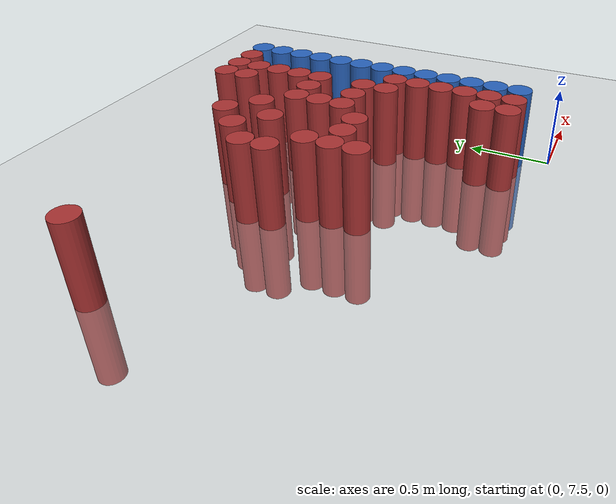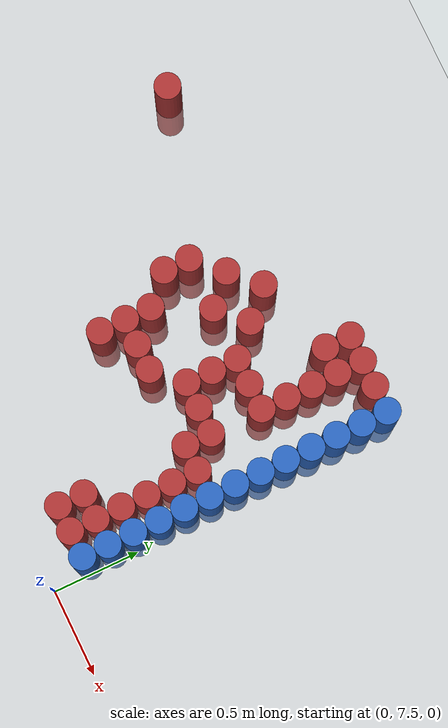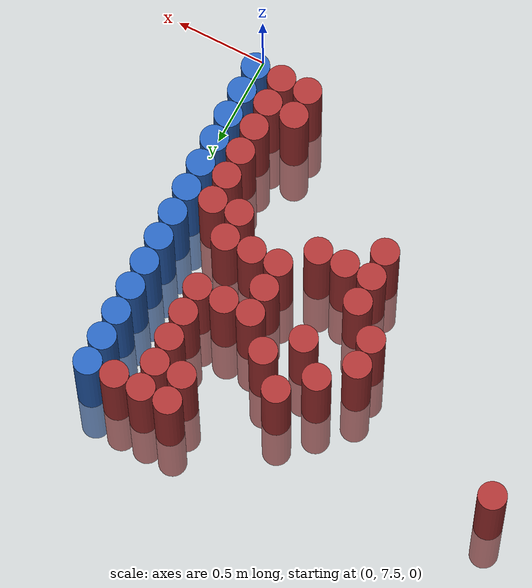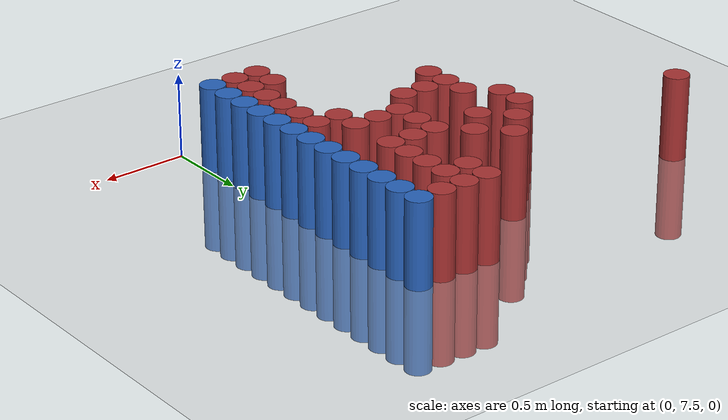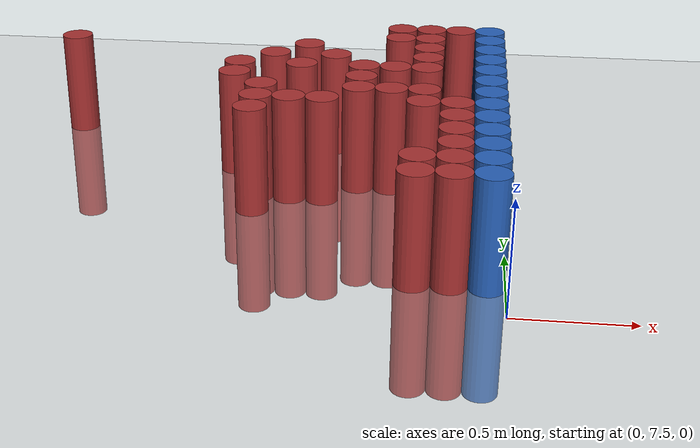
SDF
<sdf version="1.6">
 <world name="default">
  <model name="ground_plane">
   <static>1</static>
   <link name="link">
    <collision name="collision">
     <geometry><plane><normal>0 0 1</normal><size>100 100</size></plane></geometry>
     <surface><friction><ode><mu>100</mu><mu2>50</mu2></ode></friction></surface>
    </collision>
    <visual name="visual">
     <cast_shadows>0</cast_shadows>
     <geometry><plane><normal>0 0 1</normal><size>100 100</size></plane></geometry>
     <material>
      <script><uri>file://media/materials/scripts/gazebo.material</uri><name>Gazebo/Grey</name></script>
     </material>
    </visual>
   </link>
  </model>
  <model name="unit_cylinder_212">
   <static>1</static>
   <pose>-2.175000 9.225000 0.000000 0.000000 0.000000 0.000000</pose>
   <link name="link">
    <inertial>
     <mass>1</mass>
     <inertia><ixx>0.145833</ixx><ixy>0</ixy><ixz>0</ixz><iyy>0.145833</iyy><iyz>0</iyz><izz>0.125</izz></inertia>
    </inertial>
    <collision name="collision">
     <geometry><cylinder><radius>0.075000</radius><length>1</length></cylinder></geometry>
    </collision>
    <visual name="visual">
     <geometry><cylinder><radius>0.075000</radius><length>1</length></cylinder></geometry>
     <material>
      <ambient>0.648000 0.192000 0.192000 1</ambient>
      <diffuse>0.648000 0.192000 0.192000 1</diffuse>
     </material>
     <material>
      <script><name>Gazebo/Grey</name><uri>file://media/materials/scripts/gazebo.material</uri></script>
     </material>
    </visual>
   </link>
  </model>
  <model name="unit_cylinder_235">
   <static>1</static>
   <pose>-1.275000 8.775000 0.000000 0.000000 0.000000 0.000000</pose>
   <link name="link">
    <inertial>
     <mass>1</mass>
     <inertia><ixx>0.145833</ixx><ixy>0</ixy><ixz>0</ixz><iyy>0.145833</iyy><iyz>0</iyz><izz>0.125</izz></inertia>
    </inertial>
    <collision name="collision">
     <geometry><cylinder><radius>0.075000</radius><length>1</length></cylinder></geometry>
    </collision>
    <visual name="visual">
     <geometry><cylinder><radius>0.075000</radius><length>1</length></cylinder></geometry>
     <material>
      <ambient>0.648000 0.192000 0.192000 1</ambient>
      <diffuse>0.648000 0.192000 0.192000 1</diffuse>
     </material>
     <material>
      <script><name>Gazebo/Grey</name><uri>file://media/materials/scripts/gazebo.material</uri></script>
     </material>
    </visual>
   </link>
  </model>
  <model name="unit_cylinder_236">
   <static>1</static>
   <pose>-1.275000 8.925000 0.000000 0.000000 0.000000 0.000000</pose>
   <link name="link">
    <inertial>
     <mass>1</mass>
     <inertia><ixx>0.145833</ixx><ixy>0</ixy><ixz>0</ixz><iyy>0.145833</iyy><iyz>0</iyz><izz>0.125</izz></inertia>
    </inertial>
    <collision name="collision">
     <geometry><cylinder><radius>0.075000</radius><length>1</length></cylinder></geometry>
    </collision>
    <visual name="visual">
     <geometry><cylinder><radius>0.075000</radius><length>1</length></cylinder></geometry>
     <material>
      <ambient>0.648000 0.192000 0.192000 1</ambient>
      <diffuse>0.648000 0.192000 0.192000 1</diffuse>
     </material>
     <material>
      <script><name>Gazebo/Grey</name><uri>file://media/materials/scripts/gazebo.material</uri></script>
     </material>
    </visual>
   </link>
  </model>
  <model name="unit_cylinder_241">
   <static>1</static>
   <pose>-1.125000 8.325000 0.000000 0.000000 0.000000 0.000000</pose>
   <link name="link">
    <inertial>
     <mass>1</mass>
     <inertia><ixx>0.145833</ixx><ixy>0</ixy><ixz>0</ixz><iyy>0.145833</iyy><iyz>0</iyz><izz>0.125</izz></inertia>
    </inertial>
    <collision name="collision">
     <geometry><cylinder><radius>0.075000</radius><length>1</length></cylinder></geometry>
    </collision>
    <visual name="visual">
     <geometry><cylinder><radius>0.075000</radius><length>1</length></cylinder></geometry>
     <material>
      <ambient>0.648000 0.192000 0.192000 1</ambient>
      <diffuse>0.648000 0.192000 0.192000 1</diffuse>
     </material>
     <material>
      <script><name>Gazebo/Grey</name><uri>file://media/materials/scripts/gazebo.material</uri></script>
     </material>
    </visual>
   </link>
  </model>
  <model name="unit_cylinder_242">
   <static>1</static>
   <pose>-1.125000 8.475000 0.000000 0.000000 0.000000 0.000000</pose>
   <link name="link">
    <inertial>
     <mass>1</mass>
     <inertia><ixx>0.145833</ixx><ixy>0</ixy><ixz>0</ixz><iyy>0.145833</iyy><iyz>0</iyz><izz>0.125</izz></inertia>
    </inertial>
    <collision name="collision">
     <geometry><cylinder><radius>0.075000</radius><length>1</length></cylinder></geometry>
    </collision>
    <visual name="visual">
     <geometry><cylinder><radius>0.075000</radius><length>1</length></cylinder></geometry>
     <material>
      <ambient>0.648000 0.192000 0.192000 1</ambient>
      <diffuse>0.648000 0.192000 0.192000 1</diffuse>
     </material>
     <material>
      <script><name>Gazebo/Grey</name><uri>file://media/materials/scripts/gazebo.material</uri></script>
     </material>
    </visual>
   </link>
  </model>
  <model name="unit_cylinder_243">
   <static>1</static>
   <pose>-1.125000 8.625000 0.000000 0.000000 0.000000 0.000000</pose>
   <link name="link">
    <inertial>
     <mass>1</mass>
     <inertia><ixx>0.145833</ixx><ixy>0</ixy><ixz>0</ixz><iyy>0.145833</iyy><iyz>0</iyz><izz>0.125</izz></inertia>
    </inertial>
    <collision name="collision">
     <geometry><cylinder><radius>0.075000</radius><length>1</length></cylinder></geometry>
    </collision>
    <visual name="visual">
     <geometry><cylinder><radius>0.075000</radius><length>1</length></cylinder></geometry>
     <material>
      <ambient>0.648000 0.192000 0.192000 1</ambient>
      <diffuse>0.648000 0.192000 0.192000 1</diffuse>
     </material>
     <material>
      <script><name>Gazebo/Grey</name><uri>file://media/materials/scripts/gazebo.material</uri></script>
     </material>
    </visual>
   </link>
  </model>
  <model name="unit_cylinder_244">
   <static>1</static>
   <pose>-1.125000 9.075000 0.000000 0.000000 0.000000 0.000000</pose>
   <link name="link">
    <inertial>
     <mass>1</mass>
     <inertia><ixx>0.145833</ixx><ixy>0</ixy><ixz>0</ixz><iyy>0.145833</iyy><iyz>0</iyz><izz>0.125</izz></inertia>
    </inertial>
    <collision name="collision">
     <geometry><cylinder><radius>0.075000</radius><length>1</length></cylinder></geometry>
    </collision>
    <visual name="visual">
     <geometry><cylinder><radius>0.075000</radius><length>1</length></cylinder></geometry>
     <material>
      <ambient>0.648000 0.192000 0.192000 1</ambient>
      <diffuse>0.648000 0.192000 0.192000 1</diffuse>
     </material>
     <material>
      <script><name>Gazebo/Grey</name><uri>file://media/materials/scripts/gazebo.material</uri></script>
     </material>
    </visual>
   </link>
  </model>
  <model name="unit_cylinder_248">
   <static>1</static>
   <pose>-0.975000 8.475000 0.000000 0.000000 0.000000 0.000000</pose>
   <link name="link">
    <inertial>
     <mass>1</mass>
     <inertia><ixx>0.145833</ixx><ixy>0</ixy><ixz>0</ixz><iyy>0.145833</iyy><iyz>0</iyz><izz>0.125</izz></inertia>
    </inertial>
    <collision name="collision">
     <geometry><cylinder><radius>0.075000</radius><length>1</length></cylinder></geometry>
    </collision>
    <visual name="visual">
     <geometry><cylinder><radius>0.075000</radius><length>1</length></cylinder></geometry>
     <material>
      <ambient>0.648000 0.192000 0.192000 1</ambient>
      <diffuse>0.648000 0.192000 0.192000 1</diffuse>
     </material>
     <material>
      <script><name>Gazebo/Grey</name><uri>file://media/materials/scripts/gazebo.material</uri></script>
     </material>
    </visual>
   </link>
  </model>
  <model name="unit_cylinder_249">
   <static>1</static>
   <pose>-0.975000 8.925000 0.000000 0.000000 0.000000 0.000000</pose>
   <link name="link">
    <inertial>
     <mass>1</mass>
     <inertia><ixx>0.145833</ixx><ixy>0</ixy><ixz>0</ixz><iyy>0.145833</iyy><iyz>0</iyz><izz>0.125</izz></inertia>
    </inertial>
    <collision name="collision">
     <geometry><cylinder><radius>0.075000</radius><length>1</length></cylinder></geometry>
    </collision>
    <visual name="visual">
     <geometry><cylinder><radius>0.075000</radius><length>1</length></cylinder></geometry>
     <material>
      <ambient>0.648000 0.192000 0.192000 1</ambient>
      <diffuse>0.648000 0.192000 0.192000 1</diffuse>
     </material>
     <material>
      <script><name>Gazebo/Grey</name><uri>file://media/materials/scripts/gazebo.material</uri></script>
     </material>
    </visual>
   </link>
  </model>
  <model name="unit_cylinder_250">
   <static>1</static>
   <pose>-0.975000 9.225000 0.000000 0.000000 0.000000 0.000000</pose>
   <link name="link">
    <inertial>
     <mass>1</mass>
     <inertia><ixx>0.145833</ixx><ixy>0</ixy><ixz>0</ixz><iyy>0.145833</iyy><iyz>0</iyz><izz>0.125</izz></inertia>
    </inertial>
    <collision name="collision">
     <geometry><cylinder><radius>0.075000</radius><length>1</length></cylinder></geometry>
    </collision>
    <visual name="visual">
     <geometry><cylinder><radius>0.075000</radius><length>1</length></cylinder></geometry>
     <material>
      <ambient>0.648000 0.192000 0.192000 1</ambient>
      <diffuse>0.648000 0.192000 0.192000 1</diffuse>
     </material>
     <material>
      <script><name>Gazebo/Grey</name><uri>file://media/materials/scripts/gazebo.material</uri></script>
     </material>
    </visual>
   </link>
  </model>
  <model name="unit_cylinder_253">
   <static>1</static>
   <pose>-0.825000 8.475000 0.000000 0.000000 0.000000 0.000000</pose>
   <link name="link">
    <inertial>
     <mass>1</mass>
     <inertia><ixx>0.145833</ixx><ixy>0</ixy><ixz>0</ixz><iyy>0.145833</iyy><iyz>0</iyz><izz>0.125</izz></inertia>
    </inertial>
    <collision name="collision">
     <geometry><cylinder><radius>0.075000</radius><length>1</length></cylinder></geometry>
    </collision>
    <visual name="visual">
     <geometry><cylinder><radius>0.075000</radius><length>1</length></cylinder></geometry>
     <material>
      <ambient>0.648000 0.192000 0.192000 1</ambient>
      <diffuse>0.648000 0.192000 0.192000 1</diffuse>
     </material>
     <material>
      <script><name>Gazebo/Grey</name><uri>file://media/materials/scripts/gazebo.material</uri></script>
     </material>
    </visual>
   </link>
  </model>
  <model name="unit_cylinder_254">
   <static>1</static>
   <pose>-0.825000 9.075000 0.000000 0.000000 0.000000 0.000000</pose>
   <link name="link">
    <inertial>
     <mass>1</mass>
     <inertia><ixx>0.145833</ixx><ixy>0</ixy><ixz>0</ixz><iyy>0.145833</iyy><iyz>0</iyz><izz>0.125</izz></inertia>
    </inertial>
    <collision name="collision">
     <geometry><cylinder><radius>0.075000</radius><length>1</length></cylinder></geometry>
    </collision>
    <visual name="visual">
     <geometry><cylinder><radius>0.075000</radius><length>1</length></cylinder></geometry>
     <material>
      <ambient>0.648000 0.192000 0.192000 1</ambient>
      <diffuse>0.648000 0.192000 0.192000 1</diffuse>
     </material>
     <material>
      <script><name>Gazebo/Grey</name><uri>file://media/materials/scripts/gazebo.material</uri></script>
     </material>
    </visual>
   </link>
  </model>
  <model name="unit_cylinder_259">
   <static>1</static>
   <pose>-0.675000 8.625000 0.000000 0.000000 0.000000 0.000000</pose>
   <link name="link">
    <inertial>
     <mass>1</mass>
     <inertia><ixx>0.145833</ixx><ixy>0</ixy><ixz>0</ixz><iyy>0.145833</iyy><iyz>0</iyz><izz>0.125</izz></inertia>
    </inertial>
    <collision name="collision">
     <geometry><cylinder><radius>0.075000</radius><length>1</length></cylinder></geometry>
    </collision>
    <visual name="visual">
     <geometry><cylinder><radius>0.075000</radius><length>1</length></cylinder></geometry>
     <material>
      <ambient>0.648000 0.192000 0.192000 1</ambient>
      <diffuse>0.648000 0.192000 0.192000 1</diffuse>
     </material>
     <material>
      <script><name>Gazebo/Grey</name><uri>file://media/materials/scripts/gazebo.material</uri></script>
     </material>
    </visual>
   </link>
  </model>
  <model name="unit_cylinder_260">
   <static>1</static>
   <pose>-0.675000 8.775000 0.000000 0.000000 0.000000 0.000000</pose>
   <link name="link">
    <inertial>
     <mass>1</mass>
     <inertia><ixx>0.145833</ixx><ixy>0</ixy><ixz>0</ixz><iyy>0.145833</iyy><iyz>0</iyz><izz>0.125</izz></inertia>
    </inertial>
    <collision name="collision">
     <geometry><cylinder><radius>0.075000</radius><length>1</length></cylinder></geometry>
    </collision>
    <visual name="visual">
     <geometry><cylinder><radius>0.075000</radius><length>1</length></cylinder></geometry>
     <material>
      <ambient>0.648000 0.192000 0.192000 1</ambient>
      <diffuse>0.648000 0.192000 0.192000 1</diffuse>
     </material>
     <material>
      <script><name>Gazebo/Grey</name><uri>file://media/materials/scripts/gazebo.material</uri></script>
     </material>
    </visual>
   </link>
  </model>
  <model name="unit_cylinder_261">
   <static>1</static>
   <pose>-0.675000 8.925000 0.000000 0.000000 0.000000 0.000000</pose>
   <link name="link">
    <inertial>
     <mass>1</mass>
     <inertia><ixx>0.145833</ixx><ixy>0</ixy><ixz>0</ixz><iyy>0.145833</iyy><iyz>0</iyz><izz>0.125</izz></inertia>
    </inertial>
    <collision name="collision">
     <geometry><cylinder><radius>0.075000</radius><length>1</length></cylinder></geometry>
    </collision>
    <visual name="visual">
     <geometry><cylinder><radius>0.075000</radius><length>1</length></cylinder></geometry>
     <material>
      <ambient>0.648000 0.192000 0.192000 1</ambient>
      <diffuse>0.648000 0.192000 0.192000 1</diffuse>
     </material>
     <material>
      <script><name>Gazebo/Grey</name><uri>file://media/materials/scripts/gazebo.material</uri></script>
     </material>
    </visual>
   </link>
  </model>
  <model name="unit_cylinder_269">
   <static>1</static>
   <pose>-0.525000 8.625000 0.000000 0.000000 0.000000 0.000000</pose>
   <link name="link">
    <inertial>
     <mass>1</mass>
     <inertia><ixx>0.145833</ixx><ixy>0</ixy><ixz>0</ixz><iyy>0.145833</iyy><iyz>0</iyz><izz>0.125</izz></inertia>
    </inertial>
    <collision name="collision">
     <geometry><cylinder><radius>0.075000</radius><length>1</length></cylinder></geometry>
    </collision>
    <visual name="visual">
     <geometry><cylinder><radius>0.075000</radius><length>1</length></cylinder></geometry>
     <material>
      <ambient>0.648000 0.192000 0.192000 1</ambient>
      <diffuse>0.648000 0.192000 0.192000 1</diffuse>
     </material>
     <material>
      <script><name>Gazebo/Grey</name><uri>file://media/materials/scripts/gazebo.material</uri></script>
     </material>
    </visual>
   </link>
  </model>
  <model name="unit_cylinder_270">
   <static>1</static>
   <pose>-0.525000 8.925000 0.000000 0.000000 0.000000 0.000000</pose>
   <link name="link">
    <inertial>
     <mass>1</mass>
     <inertia><ixx>0.145833</ixx><ixy>0</ixy><ixz>0</ixz><iyy>0.145833</iyy><iyz>0</iyz><izz>0.125</izz></inertia>
    </inertial>
    <collision name="collision">
     <geometry><cylinder><radius>0.075000</radius><length>1</length></cylinder></geometry>
    </collision>
    <visual name="visual">
     <geometry><cylinder><radius>0.075000</radius><length>1</length></cylinder></geometry>
     <material>
      <ambient>0.648000 0.192000 0.192000 1</ambient>
      <diffuse>0.648000 0.192000 0.192000 1</diffuse>
     </material>
     <material>
      <script><name>Gazebo/Grey</name><uri>file://media/materials/scripts/gazebo.material</uri></script>
     </material>
    </visual>
   </link>
  </model>
  <model name="unit_cylinder_271">
   <static>1</static>
   <pose>-0.525000 9.375000 0.000000 0.000000 0.000000 0.000000</pose>
   <link name="link">
    <inertial>
     <mass>1</mass>
     <inertia><ixx>0.145833</ixx><ixy>0</ixy><ixz>0</ixz><iyy>0.145833</iyy><iyz>0</iyz><izz>0.125</izz></inertia>
    </inertial>
    <collision name="collision">
     <geometry><cylinder><radius>0.075000</radius><length>1</length></cylinder></geometry>
    </collision>
    <visual name="visual">
     <geometry><cylinder><radius>0.075000</radius><length>1</length></cylinder></geometry>
     <material>
      <ambient>0.648000 0.192000 0.192000 1</ambient>
      <diffuse>0.648000 0.192000 0.192000 1</diffuse>
     </material>
     <material>
      <script><name>Gazebo/Grey</name><uri>file://media/materials/scripts/gazebo.material</uri></script>
     </material>
    </visual>
   </link>
  </model>
  <model name="unit_cylinder_272">
   <static>1</static>
   <pose>-0.525000 9.525000 0.000000 0.000000 0.000000 0.000000</pose>
   <link name="link">
    <inertial>
     <mass>1</mass>
     <inertia><ixx>0.145833</ixx><ixy>0</ixy><ixz>0</ixz><iyy>0.145833</iyy><iyz>0</iyz><izz>0.125</izz></inertia>
    </inertial>
    <collision name="collision">
     <geometry><cylinder><radius>0.075000</radius><length>1</length></cylinder></geometry>
    </collision>
    <visual name="visual">
     <geometry><cylinder><radius>0.075000</radius><length>1</length></cylinder></geometry>
     <material>
      <ambient>0.648000 0.192000 0.192000 1</ambient>
      <diffuse>0.648000 0.192000 0.192000 1</diffuse>
     </material>
     <material>
      <script><name>Gazebo/Grey</name><uri>file://media/materials/scripts/gazebo.material</uri></script>
     </material>
    </visual>
   </link>
  </model>
  <model name="unit_cylinder_282">
   <static>1</static>
   <pose>-0.375000 7.725000 0.000000 0.000000 0.000000 0.000000</pose>
   <link name="link">
    <inertial>
     <mass>1</mass>
     <inertia><ixx>0.145833</ixx><ixy>0</ixy><ixz>0</ixz><iyy>0.145833</iyy><iyz>0</iyz><izz>0.125</izz></inertia>
    </inertial>
    <collision name="collision">
     <geometry><cylinder><radius>0.075000</radius><length>1</length></cylinder></geometry>
    </collision>
    <visual name="visual">
     <geometry><cylinder><radius>0.075000</radius><length>1</length></cylinder></geometry>
     <material>
      <ambient>0.648000 0.192000 0.192000 1</ambient>
      <diffuse>0.648000 0.192000 0.192000 1</diffuse>
     </material>
     <material>
      <script><name>Gazebo/Grey</name><uri>file://media/materials/scripts/gazebo.material</uri></script>
     </material>
    </visual>
   </link>
  </model>
  <model name="unit_cylinder_283">
   <static>1</static>
   <pose>-0.375000 7.875000 0.000000 0.000000 0.000000 0.000000</pose>
   <link name="link">
    <inertial>
     <mass>1</mass>
     <inertia><ixx>0.145833</ixx><ixy>0</ixy><ixz>0</ixz><iyy>0.145833</iyy><iyz>0</iyz><izz>0.125</izz></inertia>
    </inertial>
    <collision name="collision">
     <geometry><cylinder><radius>0.075000</radius><length>1</length></cylinder></geometry>
    </collision>
    <visual name="visual">
     <geometry><cylinder><radius>0.075000</radius><length>1</length></cylinder></geometry>
     <material>
      <ambient>0.648000 0.192000 0.192000 1</ambient>
      <diffuse>0.648000 0.192000 0.192000 1</diffuse>
     </material>
     <material>
      <script><name>Gazebo/Grey</name><uri>file://media/materials/scripts/gazebo.material</uri></script>
     </material>
    </visual>
   </link>
  </model>
  <model name="unit_cylinder_284">
   <static>1</static>
   <pose>-0.375000 8.475000 0.000000 0.000000 0.000000 0.000000</pose>
   <link name="link">
    <inertial>
     <mass>1</mass>
     <inertia><ixx>0.145833</ixx><ixy>0</ixy><ixz>0</ixz><iyy>0.145833</iyy><iyz>0</iyz><izz>0.125</izz></inertia>
    </inertial>
    <collision name="collision">
     <geometry><cylinder><radius>0.075000</radius><length>1</length></cylinder></geometry>
    </collision>
    <visual name="visual">
     <geometry><cylinder><radius>0.075000</radius><length>1</length></cylinder></geometry>
     <material>
      <ambient>0.648000 0.192000 0.192000 1</ambient>
      <diffuse>0.648000 0.192000 0.192000 1</diffuse>
     </material>
     <material>
      <script><name>Gazebo/Grey</name><uri>file://media/materials/scripts/gazebo.material</uri></script>
     </material>
    </visual>
   </link>
  </model>
  <model name="unit_cylinder_285">
   <static>1</static>
   <pose>-0.375000 8.625000 0.000000 0.000000 0.000000 0.000000</pose>
   <link name="link">
    <inertial>
     <mass>1</mass>
     <inertia><ixx>0.145833</ixx><ixy>0</ixy><ixz>0</ixz><iyy>0.145833</iyy><iyz>0</iyz><izz>0.125</izz></inertia>
    </inertial>
    <collision name="collision">
     <geometry><cylinder><radius>0.075000</radius><length>1</length></cylinder></geometry>
    </collision>
    <visual name="visual">
     <geometry><cylinder><radius>0.075000</radius><length>1</length></cylinder></geometry>
     <material>
      <ambient>0.648000 0.192000 0.192000 1</ambient>
      <diffuse>0.648000 0.192000 0.192000 1</diffuse>
     </material>
     <material>
      <script><name>Gazebo/Grey</name><uri>file://media/materials/scripts/gazebo.material</uri></script>
     </material>
    </visual>
   </link>
  </model>
  <model name="unit_cylinder_286">
   <static>1</static>
   <pose>-0.375000 8.925000 0.000000 0.000000 0.000000 0.000000</pose>
   <link name="link">
    <inertial>
     <mass>1</mass>
     <inertia><ixx>0.145833</ixx><ixy>0</ixy><ixz>0</ixz><iyy>0.145833</iyy><iyz>0</iyz><izz>0.125</izz></inertia>
    </inertial>
    <collision name="collision">
     <geometry><cylinder><radius>0.075000</radius><length>1</length></cylinder></geometry>
    </collision>
    <visual name="visual">
     <geometry><cylinder><radius>0.075000</radius><length>1</length></cylinder></geometry>
     <material>
      <ambient>0.648000 0.192000 0.192000 1</ambient>
      <diffuse>0.648000 0.192000 0.192000 1</diffuse>
     </material>
     <material>
      <script><name>Gazebo/Grey</name><uri>file://media/materials/scripts/gazebo.material</uri></script>
     </material>
    </visual>
   </link>
  </model>
  <model name="unit_cylinder_287">
   <static>1</static>
   <pose>-0.375000 9.075000 0.000000 0.000000 0.000000 0.000000</pose>
   <link name="link">
    <inertial>
     <mass>1</mass>
     <inertia><ixx>0.145833</ixx><ixy>0</ixy><ixz>0</ixz><iyy>0.145833</iyy><iyz>0</iyz><izz>0.125</izz></inertia>
    </inertial>
    <collision name="collision">
     <geometry><cylinder><radius>0.075000</radius><length>1</length></cylinder></geometry>
    </collision>
    <visual name="visual">
     <geometry><cylinder><radius>0.075000</radius><length>1</length></cylinder></geometry>
     <material>
      <ambient>0.648000 0.192000 0.192000 1</ambient>
      <diffuse>0.648000 0.192000 0.192000 1</diffuse>
     </material>
     <material>
      <script><name>Gazebo/Grey</name><uri>file://media/materials/scripts/gazebo.material</uri></script>
     </material>
    </visual>
   </link>
  </model>
  <model name="unit_cylinder_288">
   <static>1</static>
   <pose>-0.375000 9.225000 0.000000 0.000000 0.000000 0.000000</pose>
   <link name="link">
    <inertial>
     <mass>1</mass>
     <inertia><ixx>0.145833</ixx><ixy>0</ixy><ixz>0</ixz><iyy>0.145833</iyy><iyz>0</iyz><izz>0.125</izz></inertia>
    </inertial>
    <collision name="collision">
     <geometry><cylinder><radius>0.075000</radius><length>1</length></cylinder></geometry>
    </collision>
    <visual name="visual">
     <geometry><cylinder><radius>0.075000</radius><length>1</length></cylinder></geometry>
     <material>
      <ambient>0.648000 0.192000 0.192000 1</ambient>
      <diffuse>0.648000 0.192000 0.192000 1</diffuse>
     </material>
     <material>
      <script><name>Gazebo/Grey</name><uri>file://media/materials/scripts/gazebo.material</uri></script>
     </material>
    </visual>
   </link>
  </model>
  <model name="unit_cylinder_289">
   <static>1</static>
   <pose>-0.375000 9.375000 0.000000 0.000000 0.000000 0.000000</pose>
   <link name="link">
    <inertial>
     <mass>1</mass>
     <inertia><ixx>0.145833</ixx><ixy>0</ixy><ixz>0</ixz><iyy>0.145833</iyy><iyz>0</iyz><izz>0.125</izz></inertia>
    </inertial>
    <collision name="collision">
     <geometry><cylinder><radius>0.075000</radius><length>1</length></cylinder></geometry>
    </collision>
    <visual name="visual">
     <geometry><cylinder><radius>0.075000</radius><length>1</length></cylinder></geometry>
     <material>
      <ambient>0.648000 0.192000 0.192000 1</ambient>
      <diffuse>0.648000 0.192000 0.192000 1</diffuse>
     </material>
     <material>
      <script><name>Gazebo/Grey</name><uri>file://media/materials/scripts/gazebo.material</uri></script>
     </material>
    </visual>
   </link>
  </model>
  <model name="unit_cylinder_290">
   <static>1</static>
   <pose>-0.375000 9.525000 0.000000 0.000000 0.000000 0.000000</pose>
   <link name="link">
    <inertial>
     <mass>1</mass>
     <inertia><ixx>0.145833</ixx><ixy>0</ixy><ixz>0</ixz><iyy>0.145833</iyy><iyz>0</iyz><izz>0.125</izz></inertia>
    </inertial>
    <collision name="collision">
     <geometry><cylinder><radius>0.075000</radius><length>1</length></cylinder></geometry>
    </collision>
    <visual name="visual">
     <geometry><cylinder><radius>0.075000</radius><length>1</length></cylinder></geometry>
     <material>
      <ambient>0.648000 0.192000 0.192000 1</ambient>
      <diffuse>0.648000 0.192000 0.192000 1</diffuse>
     </material>
     <material>
      <script><name>Gazebo/Grey</name><uri>file://media/materials/scripts/gazebo.material</uri></script>
     </material>
    </visual>
   </link>
  </model>
  <model name="unit_cylinder_299">
   <static>1</static>
   <pose>-0.225000 7.725000 0.000000 0.000000 0.000000 0.000000</pose>
   <link name="link">
    <inertial>
     <mass>1</mass>
     <inertia><ixx>0.145833</ixx><ixy>0</ixy><ixz>0</ixz><iyy>0.145833</iyy><iyz>0</iyz><izz>0.125</izz></inertia>
    </inertial>
    <collision name="collision">
     <geometry><cylinder><radius>0.075000</radius><length>1</length></cylinder></geometry>
    </collision>
    <visual name="visual">
     <geometry><cylinder><radius>0.075000</radius><length>1</length></cylinder></geometry>
     <material>
      <ambient>0.648000 0.192000 0.192000 1</ambient>
      <diffuse>0.648000 0.192000 0.192000 1</diffuse>
     </material>
     <material>
      <script><name>Gazebo/Grey</name><uri>file://media/materials/scripts/gazebo.material</uri></script>
     </material>
    </visual>
   </link>
  </model>
  <model name="unit_cylinder_300">
   <static>1</static>
   <pose>-0.225000 7.875000 0.000000 0.000000 0.000000 0.000000</pose>
   <link name="link">
    <inertial>
     <mass>1</mass>
     <inertia><ixx>0.145833</ixx><ixy>0</ixy><ixz>0</ixz><iyy>0.145833</iyy><iyz>0</iyz><izz>0.125</izz></inertia>
    </inertial>
    <collision name="collision">
     <geometry><cylinder><radius>0.075000</radius><length>1</length></cylinder></geometry>
    </collision>
    <visual name="visual">
     <geometry><cylinder><radius>0.075000</radius><length>1</length></cylinder></geometry>
     <material>
      <ambient>0.648000 0.192000 0.192000 1</ambient>
      <diffuse>0.648000 0.192000 0.192000 1</diffuse>
     </material>
     <material>
      <script><name>Gazebo/Grey</name><uri>file://media/materials/scripts/gazebo.material</uri></script>
     </material>
    </visual>
   </link>
  </model>
  <model name="unit_cylinder_301">
   <static>1</static>
   <pose>-0.225000 8.025000 0.000000 0.000000 0.000000 0.000000</pose>
   <link name="link">
    <inertial>
     <mass>1</mass>
     <inertia><ixx>0.145833</ixx><ixy>0</ixy><ixz>0</ixz><iyy>0.145833</iyy><iyz>0</iyz><izz>0.125</izz></inertia>
    </inertial>
    <collision name="collision">
     <geometry><cylinder><radius>0.075000</radius><length>1</length></cylinder></geometry>
    </collision>
    <visual name="visual">
     <geometry><cylinder><radius>0.075000</radius><length>1</length></cylinder></geometry>
     <material>
      <ambient>0.648000 0.192000 0.192000 1</ambient>
      <diffuse>0.648000 0.192000 0.192000 1</diffuse>
     </material>
     <material>
      <script><name>Gazebo/Grey</name><uri>file://media/materials/scripts/gazebo.material</uri></script>
     </material>
    </visual>
   </link>
  </model>
  <model name="unit_cylinder_302">
   <static>1</static>
   <pose>-0.225000 8.175000 0.000000 0.000000 0.000000 0.000000</pose>
   <link name="link">
    <inertial>
     <mass>1</mass>
     <inertia><ixx>0.145833</ixx><ixy>0</ixy><ixz>0</ixz><iyy>0.145833</iyy><iyz>0</iyz><izz>0.125</izz></inertia>
    </inertial>
    <collision name="collision">
     <geometry><cylinder><radius>0.075000</radius><length>1</length></cylinder></geometry>
    </collision>
    <visual name="visual">
     <geometry><cylinder><radius>0.075000</radius><length>1</length></cylinder></geometry>
     <material>
      <ambient>0.648000 0.192000 0.192000 1</ambient>
      <diffuse>0.648000 0.192000 0.192000 1</diffuse>
     </material>
     <material>
      <script><name>Gazebo/Grey</name><uri>file://media/materials/scripts/gazebo.material</uri></script>
     </material>
    </visual>
   </link>
  </model>
  <model name="unit_cylinder_303">
   <static>1</static>
   <pose>-0.225000 8.325000 0.000000 0.000000 0.000000 0.000000</pose>
   <link name="link">
    <inertial>
     <mass>1</mass>
     <inertia><ixx>0.145833</ixx><ixy>0</ixy><ixz>0</ixz><iyy>0.145833</iyy><iyz>0</iyz><izz>0.125</izz></inertia>
    </inertial>
    <collision name="collision">
     <geometry><cylinder><radius>0.075000</radius><length>1</length></cylinder></geometry>
    </collision>
    <visual name="visual">
     <geometry><cylinder><radius>0.075000</radius><length>1</length></cylinder></geometry>
     <material>
      <ambient>0.648000 0.192000 0.192000 1</ambient>
      <diffuse>0.648000 0.192000 0.192000 1</diffuse>
     </material>
     <material>
      <script><name>Gazebo/Grey</name><uri>file://media/materials/scripts/gazebo.material</uri></script>
     </material>
    </visual>
   </link>
  </model>
  <model name="unit_cylinder_304">
   <static>1</static>
   <pose>-0.225000 8.475000 0.000000 0.000000 0.000000 0.000000</pose>
   <link name="link">
    <inertial>
     <mass>1</mass>
     <inertia><ixx>0.145833</ixx><ixy>0</ixy><ixz>0</ixz><iyy>0.145833</iyy><iyz>0</iyz><izz>0.125</izz></inertia>
    </inertial>
    <collision name="collision">
     <geometry><cylinder><radius>0.075000</radius><length>1</length></cylinder></geometry>
    </collision>
    <visual name="visual">
     <geometry><cylinder><radius>0.075000</radius><length>1</length></cylinder></geometry>
     <material>
      <ambient>0.648000 0.192000 0.192000 1</ambient>
      <diffuse>0.648000 0.192000 0.192000 1</diffuse>
     </material>
     <material>
      <script><name>Gazebo/Grey</name><uri>file://media/materials/scripts/gazebo.material</uri></script>
     </material>
    </visual>
   </link>
  </model>
  <model name="unit_cylinder_305">
   <static>1</static>
   <pose>-0.225000 9.525000 0.000000 0.000000 0.000000 0.000000</pose>
   <link name="link">
    <inertial>
     <mass>1</mass>
     <inertia><ixx>0.145833</ixx><ixy>0</ixy><ixz>0</ixz><iyy>0.145833</iyy><iyz>0</iyz><izz>0.125</izz></inertia>
    </inertial>
    <collision name="collision">
     <geometry><cylinder><radius>0.075000</radius><length>1</length></cylinder></geometry>
    </collision>
    <visual name="visual">
     <geometry><cylinder><radius>0.075000</radius><length>1</length></cylinder></geometry>
     <material>
      <ambient>0.648000 0.192000 0.192000 1</ambient>
      <diffuse>0.648000 0.192000 0.192000 1</diffuse>
     </material>
     <material>
      <script><name>Gazebo/Grey</name><uri>file://media/materials/scripts/gazebo.material</uri></script>
     </material>
    </visual>
   </link>
  </model>
  <model name="unit_cylinder_323">
   <static>1</static>
   <pose>-0.075000 7.725000 0.000000 0.000000 0.000000 0.000000</pose>
   <link name="link">
    <inertial>
     <mass>1</mass>
     <inertia><ixx>0.145833</ixx><ixy>0</ixy><ixz>0</ixz><iyy>0.145833</iyy><iyz>0</iyz><izz>0.125</izz></inertia>
    </inertial>
    <collision name="collision">
     <geometry><cylinder><radius>0.075000</radius><length>1</length></cylinder></geometry>
    </collision>
    <visual name="visual">
     <geometry><cylinder><radius>0.075000</radius><length>1</length></cylinder></geometry>
     <material>
      <ambient>0.152000 0.379000 0.720000 1</ambient>
      <diffuse>0.152000 0.379000 0.720000 1</diffuse>
     </material>
     <material>
      <script><name>Gazebo/Grey</name><uri>file://media/materials/scripts/gazebo.material</uri></script>
     </material>
    </visual>
   </link>
  </model>
  <model name="unit_cylinder_324">
   <static>1</static>
   <pose>-0.075000 7.875000 0.000000 0.000000 0.000000 0.000000</pose>
   <link name="link">
    <inertial>
     <mass>1</mass>
     <inertia><ixx>0.145833</ixx><ixy>0</ixy><ixz>0</ixz><iyy>0.145833</iyy><iyz>0</iyz><izz>0.125</izz></inertia>
    </inertial>
    <collision name="collision">
     <geometry><cylinder><radius>0.075000</radius><length>1</length></cylinder></geometry>
    </collision>
    <visual name="visual">
     <geometry><cylinder><radius>0.075000</radius><length>1</length></cylinder></geometry>
     <material>
      <ambient>0.152000 0.379000 0.720000 1</ambient>
      <diffuse>0.152000 0.379000 0.720000 1</diffuse>
     </material>
     <material>
      <script><name>Gazebo/Grey</name><uri>file://media/materials/scripts/gazebo.material</uri></script>
     </material>
    </visual>
   </link>
  </model>
  <model name="unit_cylinder_325">
   <static>1</static>
   <pose>-0.075000 8.025000 0.000000 0.000000 0.000000 0.000000</pose>
   <link name="link">
    <inertial>
     <mass>1</mass>
     <inertia><ixx>0.145833</ixx><ixy>0</ixy><ixz>0</ixz><iyy>0.145833</iyy><iyz>0</iyz><izz>0.125</izz></inertia>
    </inertial>
    <collision name="collision">
     <geometry><cylinder><radius>0.075000</radius><length>1</length></cylinder></geometry>
    </collision>
    <visual name="visual">
     <geometry><cylinder><radius>0.075000</radius><length>1</length></cylinder></geometry>
     <material>
      <ambient>0.152000 0.379000 0.720000 1</ambient>
      <diffuse>0.152000 0.379000 0.720000 1</diffuse>
     </material>
     <material>
      <script><name>Gazebo/Grey</name><uri>file://media/materials/scripts/gazebo.material</uri></script>
     </material>
    </visual>
   </link>
  </model>
  <model name="unit_cylinder_326">
   <static>1</static>
   <pose>-0.075000 8.175000 0.000000 0.000000 0.000000 0.000000</pose>
   <link name="link">
    <inertial>
     <mass>1</mass>
     <inertia><ixx>0.145833</ixx><ixy>0</ixy><ixz>0</ixz><iyy>0.145833</iyy><iyz>0</iyz><izz>0.125</izz></inertia>
    </inertial>
    <collision name="collision">
     <geometry><cylinder><radius>0.075000</radius><length>1</length></cylinder></geometry>
    </collision>
    <visual name="visual">
     <geometry><cylinder><radius>0.075000</radius><length>1</length></cylinder></geometry>
     <material>
      <ambient>0.152000 0.379000 0.720000 1</ambient>
      <diffuse>0.152000 0.379000 0.720000 1</diffuse>
     </material>
     <material>
      <script><name>Gazebo/Grey</name><uri>file://media/materials/scripts/gazebo.material</uri></script>
     </material>
    </visual>
   </link>
  </model>
  <model name="unit_cylinder_327">
   <static>1</static>
   <pose>-0.075000 8.325000 0.000000 0.000000 0.000000 0.000000</pose>
   <link name="link">
    <inertial>
     <mass>1</mass>
     <inertia><ixx>0.145833</ixx><ixy>0</ixy><ixz>0</ixz><iyy>0.145833</iyy><iyz>0</iyz><izz>0.125</izz></inertia>
    </inertial>
    <collision name="collision">
     <geometry><cylinder><radius>0.075000</radius><length>1</length></cylinder></geometry>
    </collision>
    <visual name="visual">
     <geometry><cylinder><radius>0.075000</radius><length>1</length></cylinder></geometry>
     <material>
      <ambient>0.152000 0.379000 0.720000 1</ambient>
      <diffuse>0.152000 0.379000 0.720000 1</diffuse>
     </material>
     <material>
      <script><name>Gazebo/Grey</name><uri>file://media/materials/scripts/gazebo.material</uri></script>
     </material>
    </visual>
   </link>
  </model>
  <model name="unit_cylinder_328">
   <static>1</static>
   <pose>-0.075000 8.475000 0.000000 0.000000 0.000000 0.000000</pose>
   <link name="link">
    <inertial>
     <mass>1</mass>
     <inertia><ixx>0.145833</ixx><ixy>0</ixy><ixz>0</ixz><iyy>0.145833</iyy><iyz>0</iyz><izz>0.125</izz></inertia>
    </inertial>
    <collision name="collision">
     <geometry><cylinder><radius>0.075000</radius><length>1</length></cylinder></geometry>
    </collision>
    <visual name="visual">
     <geometry><cylinder><radius>0.075000</radius><length>1</length></cylinder></geometry>
     <material>
      <ambient>0.152000 0.379000 0.720000 1</ambient>
      <diffuse>0.152000 0.379000 0.720000 1</diffuse>
     </material>
     <material>
      <script><name>Gazebo/Grey</name><uri>file://media/materials/scripts/gazebo.material</uri></script>
     </material>
    </visual>
   </link>
  </model>
  <model name="unit_cylinder_329">
   <static>1</static>
   <pose>-0.075000 8.625000 0.000000 0.000000 0.000000 0.000000</pose>
   <link name="link">
    <inertial>
     <mass>1</mass>
     <inertia><ixx>0.145833</ixx><ixy>0</ixy><ixz>0</ixz><iyy>0.145833</iyy><iyz>0</iyz><izz>0.125</izz></inertia>
    </inertial>
    <collision name="collision">
     <geometry><cylinder><radius>0.075000</radius><length>1</length></cylinder></geometry>
    </collision>
    <visual name="visual">
     <geometry><cylinder><radius>0.075000</radius><length>1</length></cylinder></geometry>
     <material>
      <ambient>0.152000 0.379000 0.720000 1</ambient>
      <diffuse>0.152000 0.379000 0.720000 1</diffuse>
     </material>
     <material>
      <script><name>Gazebo/Grey</name><uri>file://media/materials/scripts/gazebo.material</uri></script>
     </material>
    </visual>
   </link>
  </model>
  <model name="unit_cylinder_330">
   <static>1</static>
   <pose>-0.075000 8.775000 0.000000 0.000000 0.000000 0.000000</pose>
   <link name="link">
    <inertial>
     <mass>1</mass>
     <inertia><ixx>0.145833</ixx><ixy>0</ixy><ixz>0</ixz><iyy>0.145833</iyy><iyz>0</iyz><izz>0.125</izz></inertia>
    </inertial>
    <collision name="collision">
     <geometry><cylinder><radius>0.075000</radius><length>1</length></cylinder></geometry>
    </collision>
    <visual name="visual">
     <geometry><cylinder><radius>0.075000</radius><length>1</length></cylinder></geometry>
     <material>
      <ambient>0.152000 0.379000 0.720000 1</ambient>
      <diffuse>0.152000 0.379000 0.720000 1</diffuse>
     </material>
     <material>
      <script><name>Gazebo/Grey</name><uri>file://media/materials/scripts/gazebo.material</uri></script>
     </material>
    </visual>
   </link>
  </model>
  <model name="unit_cylinder_331">
   <static>1</static>
   <pose>-0.075000 8.925000 0.000000 0.000000 0.000000 0.000000</pose>
   <link name="link">
    <inertial>
     <mass>1</mass>
     <inertia><ixx>0.145833</ixx><ixy>0</ixy><ixz>0</ixz><iyy>0.145833</iyy><iyz>0</iyz><izz>0.125</izz></inertia>
    </inertial>
    <collision name="collision">
     <geometry><cylinder><radius>0.075000</radius><length>1</length></cylinder></geometry>
    </collision>
    <visual name="visual">
     <geometry><cylinder><radius>0.075000</radius><length>1</length></cylinder></geometry>
     <material>
      <ambient>0.152000 0.379000 0.720000 1</ambient>
      <diffuse>0.152000 0.379000 0.720000 1</diffuse>
     </material>
     <material>
      <script><name>Gazebo/Grey</name><uri>file://media/materials/scripts/gazebo.material</uri></script>
     </material>
    </visual>
   </link>
  </model>
  <model name="unit_cylinder_332">
   <static>1</static>
   <pose>-0.075000 9.075000 0.000000 0.000000 0.000000 0.000000</pose>
   <link name="link">
    <inertial>
     <mass>1</mass>
     <inertia><ixx>0.145833</ixx><ixy>0</ixy><ixz>0</ixz><iyy>0.145833</iyy><iyz>0</iyz><izz>0.125</izz></inertia>
    </inertial>
    <collision name="collision">
     <geometry><cylinder><radius>0.075000</radius><length>1</length></cylinder></geometry>
    </collision>
    <visual name="visual">
     <geometry><cylinder><radius>0.075000</radius><length>1</length></cylinder></geometry>
     <material>
      <ambient>0.152000 0.379000 0.720000 1</ambient>
      <diffuse>0.152000 0.379000 0.720000 1</diffuse>
     </material>
     <material>
      <script><name>Gazebo/Grey</name><uri>file://media/materials/scripts/gazebo.material</uri></script>
     </material>
    </visual>
   </link>
  </model>
  <model name="unit_cylinder_333">
   <static>1</static>
   <pose>-0.075000 9.225000 0.000000 0.000000 0.000000 0.000000</pose>
   <link name="link">
    <inertial>
     <mass>1</mass>
     <inertia><ixx>0.145833</ixx><ixy>0</ixy><ixz>0</ixz><iyy>0.145833</iyy><iyz>0</iyz><izz>0.125</izz></inertia>
    </inertial>
    <collision name="collision">
     <geometry><cylinder><radius>0.075000</radius><length>1</length></cylinder></geometry>
    </collision>
    <visual name="visual">
     <geometry><cylinder><radius>0.075000</radius><length>1</length></cylinder></geometry>
     <material>
      <ambient>0.152000 0.379000 0.720000 1</ambient>
      <diffuse>0.152000 0.379000 0.720000 1</diffuse>
     </material>
     <material>
      <script><name>Gazebo/Grey</name><uri>file://media/materials/scripts/gazebo.material</uri></script>
     </material>
    </visual>
   </link>
  </model>
  <model name="unit_cylinder_334">
   <static>1</static>
   <pose>-0.075000 9.375000 0.000000 0.000000 0.000000 0.000000</pose>
   <link name="link">
    <inertial>
     <mass>1</mass>
     <inertia><ixx>0.145833</ixx><ixy>0</ixy><ixz>0</ixz><iyy>0.145833</iyy><iyz>0</iyz><izz>0.125</izz></inertia>
    </inertial>
    <collision name="collision">
     <geometry><cylinder><radius>0.075000</radius><length>1</length></cylinder></geometry>
    </collision>
    <visual name="visual">
     <geometry><cylinder><radius>0.075000</radius><length>1</length></cylinder></geometry>
     <material>
      <ambient>0.152000 0.379000 0.720000 1</ambient>
      <diffuse>0.152000 0.379000 0.720000 1</diffuse>
     </material>
     <material>
      <script><name>Gazebo/Grey</name><uri>file://media/materials/scripts/gazebo.material</uri></script>
     </material>
    </visual>
   </link>
  </model>
  <model name="unit_cylinder_335">
   <static>1</static>
   <pose>-0.075000 9.525000 0.000000 0.000000 0.000000 0.000000</pose>
   <link name="link">
    <inertial>
     <mass>1</mass>
     <inertia><ixx>0.145833</ixx><ixy>0</ixy><ixz>0</ixz><iyy>0.145833</iyy><iyz>0</iyz><izz>0.125</izz></inertia>
    </inertial>
    <collision name="collision">
     <geometry><cylinder><radius>0.075000</radius><length>1</length></cylinder></geometry>
    </collision>
    <visual name="visual">
     <geometry><cylinder><radius>0.075000</radius><length>1</length></cylinder></geometry>
     <material>
      <ambient>0.152000 0.379000 0.720000 1</ambient>
      <diffuse>0.152000 0.379000 0.720000 1</diffuse>
     </material>
     <material>
      <script><name>Gazebo/Grey</name><uri>file://media/materials/scripts/gazebo.material</uri></script>
     </material>
    </visual>
   </link>
  </model>
 </world>
</sdf>
